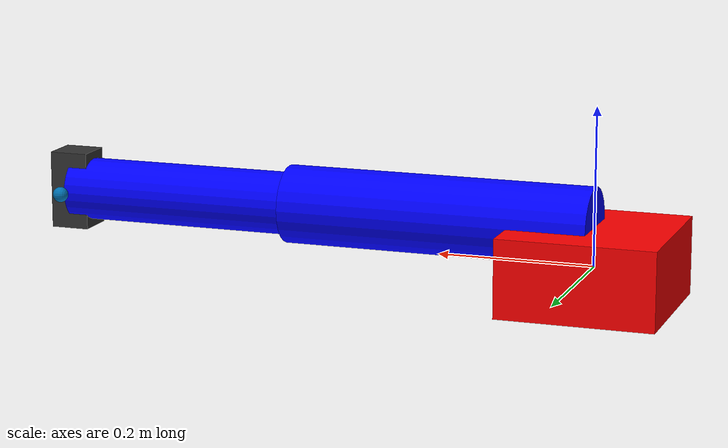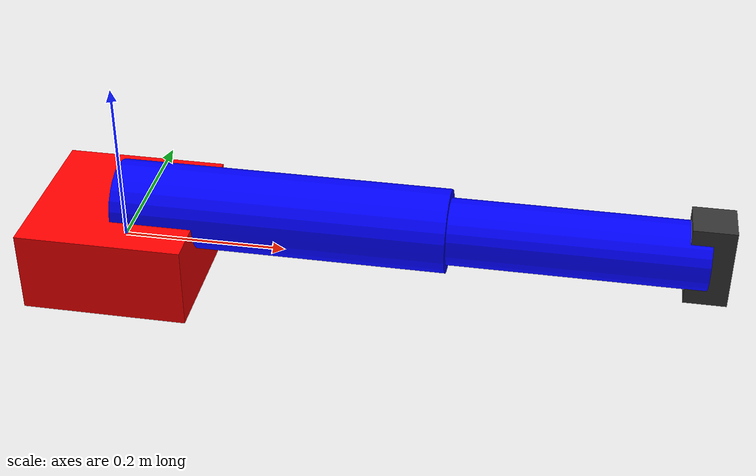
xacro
<?xml version="1.0"?>
<robot xmlns:xacro="http://www.ros.org/wiki/xacro" name="advanced_cobot">

  <!-- 1. Global Properties & Constants -->
  <xacro:property name="PI" value="3.1415926535" />
  <xacro:property name="arm_color" value="blue" />
  <xacro:property name="has_gripper" value="true" />

  <material name="blue"><color rgba="0 0 1 1"/></material>
  <material name="red"><color rgba="1 0 0 1"/></material>

  <!-- 2. External Includes (Testing $(find)) -->
  <xacro:include filename="$(find cobot_arm)/arm_module.xacro" />
  <xacro:include filename="$(find gripper_pkg)/gripper.xacro" />

  <!-- 3. Base Link -->
  <link name="base_link">
    <visual>
      <geometry><box size="0.2 0.2 0.1"/></geometry>
      <material name="red"/>
    </visual>
  </link>

  <!-- 4. Chain of joints (Testing nested math and properties) -->
  <xacro:arm_segment prefix="link1" parent="base_link" length="0.4" radius="0.05" color="blue">
    <origin xyz="0 0 0.05" rpy="0 0 0"/>
  </xacro:arm_segment>

  <xacro:arm_segment prefix="link2" parent="link1_link" length="0.3" radius="0.04" color="blue">
    <origin xyz="0.4 0 0" rpy="${PI/2} 0 0"/>
  </xacro:arm_segment>

  <!-- 5. Conditional Gripper (Testing xacro:if) -->
  <xacro:if value="${has_gripper}">
    <xacro:industrial_gripper parent="link2_link" prefix="main" use_friction="true">
      <origin xyz="0.3 0 0" rpy="0 ${PI/2} 0"/>
    </xacro:industrial_gripper>
  </xacro:if>

  <!-- 6. Verify property overwrite (Optional) -->
  <xacro:unless value="${has_gripper}">
    <!-- This part should be hidden if has_gripper is true -->
    <link name="stub_end"><visual><geometry><sphere radius="0.05"/></geometry></visual></link>
    <joint name="stub_joint" type="fixed"><parent link="link2_link"/><child link="stub_end"/></joint>
  </xacro:unless>

</robot>

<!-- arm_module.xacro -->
<robot xmlns:xacro="http://www.ros.org/wiki/xacro">
  <!-- A generic arm segment macro -->
  <xacro:macro name="arm_segment" params="prefix parent length radius color *origin">
    <joint name="${prefix}_joint" type="revolute">
      <xacro:insert_block name="origin" />
      <parent link="${parent}"/>
      <child link="${prefix}_link"/>
      <axis xyz="0 0 1"/>
      <limit lower="-3.14" upper="3.14" effort="100" velocity="1"/>
    </joint>

    <link name="${prefix}_link">
      <visual>
        <origin xyz="${length/2} 0 0" rpy="0 ${PI/2} 0"/>
        <geometry>
          <cylinder radius="${radius}" length="${length}"/>
        </geometry>
        <material name="${color}"/>
      </visual>
    </link>
  </xacro:macro>
</robot>

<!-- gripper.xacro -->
<robot xmlns:xacro="http://www.ros.org/wiki/xacro">
  <!-- Macro for a generic 2-finger gripper -->
  <xacro:macro name="industrial_gripper" params="parent prefix *origin use_friction">
    <joint name="${prefix}_gripper_base_joint" type="fixed">
      <xacro:insert_block name="origin" />
      <parent link="${parent}"/>
      <child link="${prefix}_gripper_base"/>
    </joint>

    <link name="${prefix}_gripper_base">
      <visual>
        <geometry><box size="0.05 0.1 0.05"/></geometry>
        <material name="dark_gray"><color rgba="0.2 0.2 0.2 1"/></material>
      </visual>
    </link>

    <!-- Fingers: Test conditional logic -->
    <xacro:if value="${use_friction}">
       <link name="${prefix}_finger_tip">
         <visual><geometry><sphere radius="0.01"/></geometry></visual>
       </link>
       <joint name="${prefix}_finger_tip_joint" type="fixed">
         <parent link="${prefix}_gripper_base"/>
         <child link="${prefix}_finger_tip"/>
         <origin xyz="0.05 0 0"/>
       </joint>
    </xacro:if>
  </xacro:macro>
</robot>
